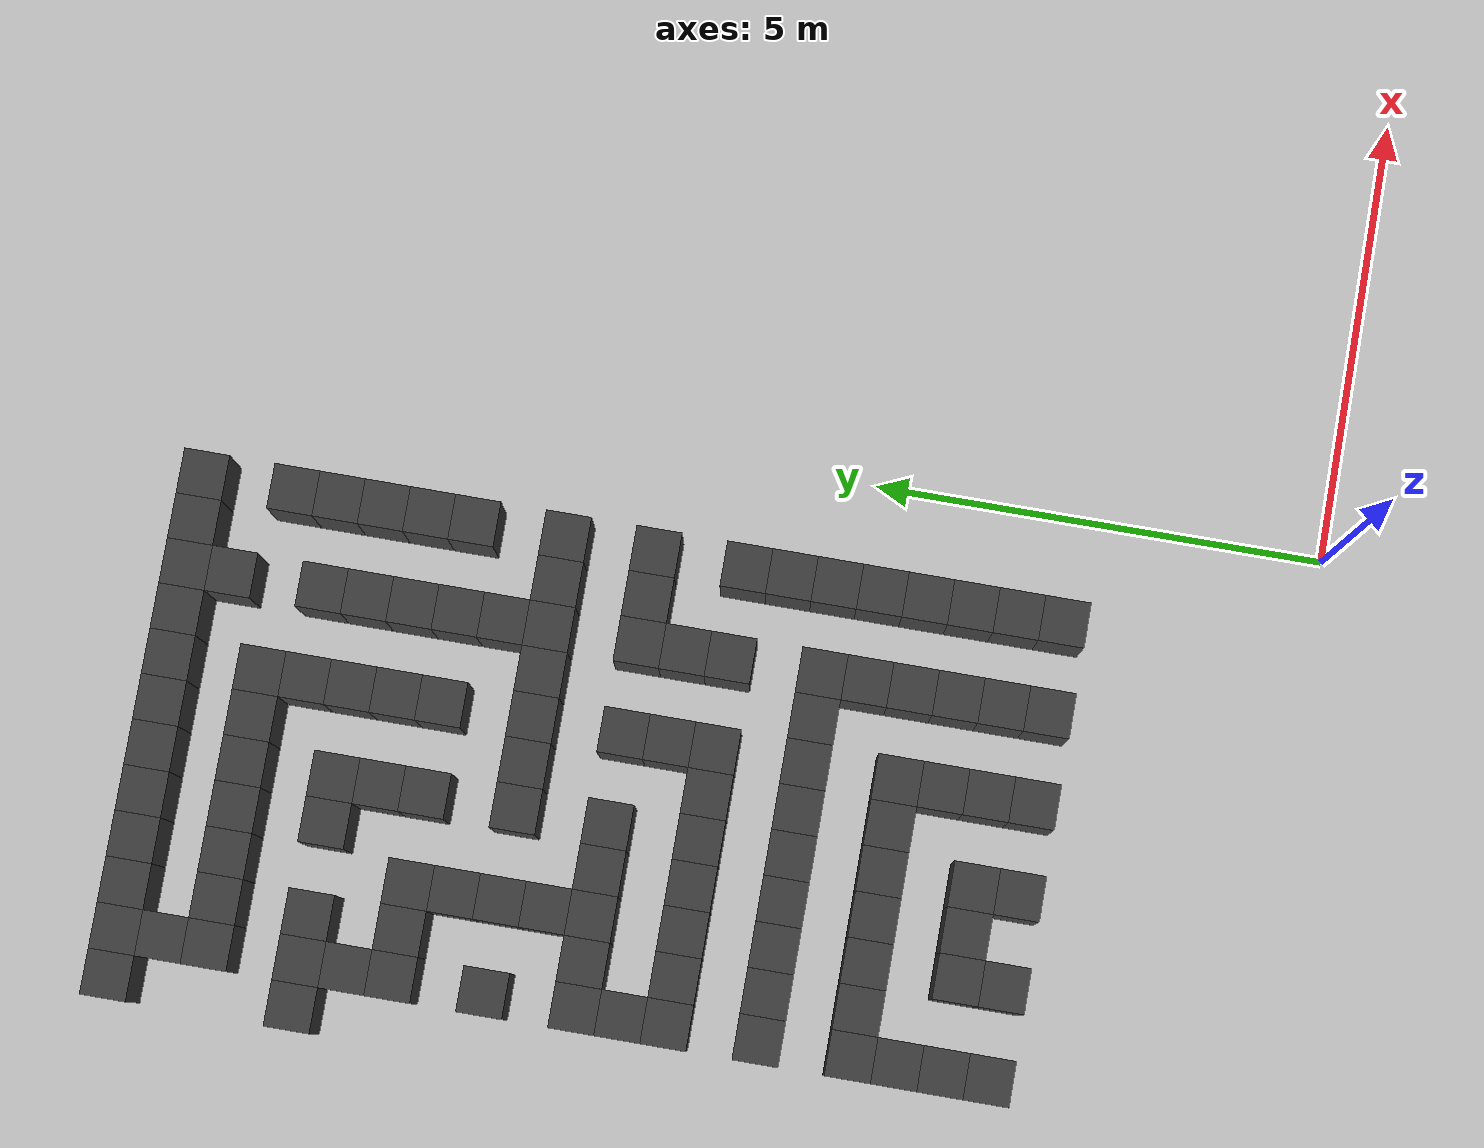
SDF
<sdf version="1.7">
 <world name="map_18313">
  <model name="ground_plane">
   <static>true</static>
   <link name="link">
    <collision name="collision">
     <geometry><plane><normal>0 0 1</normal><size>200 200</size></plane></geometry>
    </collision>
    <visual name="visual">
     <geometry><plane><normal>0 0 1</normal><size>200 200</size></plane></geometry>
     <material><ambient>0.8 0.8 0.8 1</ambient><diffuse>0.8 0.8 0.8 1</diffuse></material>
    </visual>
   </link>
  </model>
  <model name="maze_environment">
   <static>true</static>
   <link name="wall_11">
    <pose>-6.750 12.250 0.500 0 0 0</pose>
    <collision name="col"><geometry><box><size>0.5 0.5 1.0</size></box></geometry></collision>
    <visual name="vis">
     <geometry><box><size>0.5 0.5 1.0</size></box></geometry>
     <material><ambient>0.15 0.15 0.15 1</ambient><diffuse>0.25 0.25 0.25 1</diffuse></material>
    </visual>
   </link>
   <link name="wall_12">
    <pose>-6.250 12.250 0.500 0 0 0</pose>
    <collision name="col"><geometry><box><size>0.5 0.5 1.0</size></box></geometry></collision>
    <visual name="vis">
     <geometry><box><size>0.5 0.5 1.0</size></box></geometry>
     <material><ambient>0.15 0.15 0.15 1</ambient><diffuse>0.25 0.25 0.25 1</diffuse></material>
    </visual>
   </link>
   <link name="wall_13">
    <pose>-5.750 12.250 0.500 0 0 0</pose>
    <collision name="col"><geometry><box><size>0.5 0.5 1.0</size></box></geometry></collision>
    <visual name="vis">
     <geometry><box><size>0.5 0.5 1.0</size></box></geometry>
     <material><ambient>0.15 0.15 0.15 1</ambient><diffuse>0.25 0.25 0.25 1</diffuse></material>
    </visual>
   </link>
   <link name="wall_14">
    <pose>-5.250 12.250 0.500 0 0 0</pose>
    <collision name="col"><geometry><box><size>0.5 0.5 1.0</size></box></geometry></collision>
    <visual name="vis">
     <geometry><box><size>0.5 0.5 1.0</size></box></geometry>
     <material><ambient>0.15 0.15 0.15 1</ambient><diffuse>0.25 0.25 0.25 1</diffuse></material>
    </visual>
   </link>
   <link name="wall_15">
    <pose>-4.750 12.250 0.500 0 0 0</pose>
    <collision name="col"><geometry><box><size>0.5 0.5 1.0</size></box></geometry></collision>
    <visual name="vis">
     <geometry><box><size>0.5 0.5 1.0</size></box></geometry>
     <material><ambient>0.15 0.15 0.15 1</ambient><diffuse>0.25 0.25 0.25 1</diffuse></material>
    </visual>
   </link>
   <link name="wall_16">
    <pose>-4.250 12.250 0.500 0 0 0</pose>
    <collision name="col"><geometry><box><size>0.5 0.5 1.0</size></box></geometry></collision>
    <visual name="vis">
     <geometry><box><size>0.5 0.5 1.0</size></box></geometry>
     <material><ambient>0.15 0.15 0.15 1</ambient><diffuse>0.25 0.25 0.25 1</diffuse></material>
    </visual>
   </link>
   <link name="wall_17">
    <pose>-3.750 12.250 0.500 0 0 0</pose>
    <collision name="col"><geometry><box><size>0.5 0.5 1.0</size></box></geometry></collision>
    <visual name="vis">
     <geometry><box><size>0.5 0.5 1.0</size></box></geometry>
     <material><ambient>0.15 0.15 0.15 1</ambient><diffuse>0.25 0.25 0.25 1</diffuse></material>
    </visual>
   </link>
   <link name="wall_18">
    <pose>-3.250 12.250 0.500 0 0 0</pose>
    <collision name="col"><geometry><box><size>0.5 0.5 1.0</size></box></geometry></collision>
    <visual name="vis">
     <geometry><box><size>0.5 0.5 1.0</size></box></geometry>
     <material><ambient>0.15 0.15 0.15 1</ambient><diffuse>0.25 0.25 0.25 1</diffuse></material>
    </visual>
   </link>
   <link name="wall_19">
    <pose>-2.750 12.250 0.500 0 0 0</pose>
    <collision name="col"><geometry><box><size>0.5 0.5 1.0</size></box></geometry></collision>
    <visual name="vis">
     <geometry><box><size>0.5 0.5 1.0</size></box></geometry>
     <material><ambient>0.15 0.15 0.15 1</ambient><diffuse>0.25 0.25 0.25 1</diffuse></material>
    </visual>
   </link>
   <link name="wall_20">
    <pose>-2.250 12.250 0.500 0 0 0</pose>
    <collision name="col"><geometry><box><size>0.5 0.5 1.0</size></box></geometry></collision>
    <visual name="vis">
     <geometry><box><size>0.5 0.5 1.0</size></box></geometry>
     <material><ambient>0.15 0.15 0.15 1</ambient><diffuse>0.25 0.25 0.25 1</diffuse></material>
    </visual>
   </link>
   <link name="wall_21">
    <pose>-1.750 12.250 0.500 0 0 0</pose>
    <collision name="col"><geometry><box><size>0.5 0.5 1.0</size></box></geometry></collision>
    <visual name="vis">
     <geometry><box><size>0.5 0.5 1.0</size></box></geometry>
     <material><ambient>0.15 0.15 0.15 1</ambient><diffuse>0.25 0.25 0.25 1</diffuse></material>
    </visual>
   </link>
   <link name="wall_22">
    <pose>-1.250 12.250 0.500 0 0 0</pose>
    <collision name="col"><geometry><box><size>0.5 0.5 1.0</size></box></geometry></collision>
    <visual name="vis">
     <geometry><box><size>0.5 0.5 1.0</size></box></geometry>
     <material><ambient>0.15 0.15 0.15 1</ambient><diffuse>0.25 0.25 0.25 1</diffuse></material>
    </visual>
   </link>
   <link name="wall_52">
    <pose>-6.250 11.750 0.500 0 0 0</pose>
    <collision name="col"><geometry><box><size>0.5 0.5 1.0</size></box></geometry></collision>
    <visual name="vis">
     <geometry><box><size>0.5 0.5 1.0</size></box></geometry>
     <material><ambient>0.15 0.15 0.15 1</ambient><diffuse>0.25 0.25 0.25 1</diffuse></material>
    </visual>
   </link>
   <link name="wall_53">
    <pose>-2.250 11.750 0.500 0 0 0</pose>
    <collision name="col"><geometry><box><size>0.5 0.5 1.0</size></box></geometry></collision>
    <visual name="vis">
     <geometry><box><size>0.5 0.5 1.0</size></box></geometry>
     <material><ambient>0.15 0.15 0.15 1</ambient><diffuse>0.25 0.25 0.25 1</diffuse></material>
    </visual>
   </link>
   <link name="wall_68">
    <pose>-6.250 11.250 0.500 0 0 0</pose>
    <collision name="col"><geometry><box><size>0.5 0.5 1.0</size></box></geometry></collision>
    <visual name="vis">
     <geometry><box><size>0.5 0.5 1.0</size></box></geometry>
     <material><ambient>0.15 0.15 0.15 1</ambient><diffuse>0.25 0.25 0.25 1</diffuse></material>
    </visual>
   </link>
   <link name="wall_69">
    <pose>-5.750 11.250 0.500 0 0 0</pose>
    <collision name="col"><geometry><box><size>0.5 0.5 1.0</size></box></geometry></collision>
    <visual name="vis">
     <geometry><box><size>0.5 0.5 1.0</size></box></geometry>
     <material><ambient>0.15 0.15 0.15 1</ambient><diffuse>0.25 0.25 0.25 1</diffuse></material>
    </visual>
   </link>
   <link name="wall_70">
    <pose>-5.250 11.250 0.500 0 0 0</pose>
    <collision name="col"><geometry><box><size>0.5 0.5 1.0</size></box></geometry></collision>
    <visual name="vis">
     <geometry><box><size>0.5 0.5 1.0</size></box></geometry>
     <material><ambient>0.15 0.15 0.15 1</ambient><diffuse>0.25 0.25 0.25 1</diffuse></material>
    </visual>
   </link>
   <link name="wall_71">
    <pose>-4.750 11.250 0.500 0 0 0</pose>
    <collision name="col"><geometry><box><size>0.5 0.5 1.0</size></box></geometry></collision>
    <visual name="vis">
     <geometry><box><size>0.5 0.5 1.0</size></box></geometry>
     <material><ambient>0.15 0.15 0.15 1</ambient><diffuse>0.25 0.25 0.25 1</diffuse></material>
    </visual>
   </link>
   <link name="wall_72">
    <pose>-4.250 11.250 0.500 0 0 0</pose>
    <collision name="col"><geometry><box><size>0.5 0.5 1.0</size></box></geometry></collision>
    <visual name="vis">
     <geometry><box><size>0.5 0.5 1.0</size></box></geometry>
     <material><ambient>0.15 0.15 0.15 1</ambient><diffuse>0.25 0.25 0.25 1</diffuse></material>
    </visual>
   </link>
   <link name="wall_73">
    <pose>-3.750 11.250 0.500 0 0 0</pose>
    <collision name="col"><geometry><box><size>0.5 0.5 1.0</size></box></geometry></collision>
    <visual name="vis">
     <geometry><box><size>0.5 0.5 1.0</size></box></geometry>
     <material><ambient>0.15 0.15 0.15 1</ambient><diffuse>0.25 0.25 0.25 1</diffuse></material>
    </visual>
   </link>
   <link name="wall_74">
    <pose>-3.250 11.250 0.500 0 0 0</pose>
    <collision name="col"><geometry><box><size>0.5 0.5 1.0</size></box></geometry></collision>
    <visual name="vis">
     <geometry><box><size>0.5 0.5 1.0</size></box></geometry>
     <material><ambient>0.15 0.15 0.15 1</ambient><diffuse>0.25 0.25 0.25 1</diffuse></material>
    </visual>
   </link>
   <link name="wall_75">
    <pose>-1.250 11.250 0.500 0 0 0</pose>
    <collision name="col"><geometry><box><size>0.5 0.5 1.0</size></box></geometry></collision>
    <visual name="vis">
     <geometry><box><size>0.5 0.5 1.0</size></box></geometry>
     <material><ambient>0.15 0.15 0.15 1</ambient><diffuse>0.25 0.25 0.25 1</diffuse></material>
    </visual>
   </link>
   <link name="wall_97">
    <pose>-3.250 10.750 0.500 0 0 0</pose>
    <collision name="col"><geometry><box><size>0.5 0.5 1.0</size></box></geometry></collision>
    <visual name="vis">
     <geometry><box><size>0.5 0.5 1.0</size></box></geometry>
     <material><ambient>0.15 0.15 0.15 1</ambient><diffuse>0.25 0.25 0.25 1</diffuse></material>
    </visual>
   </link>
   <link name="wall_98">
    <pose>-2.250 10.750 0.500 0 0 0</pose>
    <collision name="col"><geometry><box><size>0.5 0.5 1.0</size></box></geometry></collision>
    <visual name="vis">
     <geometry><box><size>0.5 0.5 1.0</size></box></geometry>
     <material><ambient>0.15 0.15 0.15 1</ambient><diffuse>0.25 0.25 0.25 1</diffuse></material>
    </visual>
   </link>
   <link name="wall_99">
    <pose>-1.250 10.750 0.500 0 0 0</pose>
    <collision name="col"><geometry><box><size>0.5 0.5 1.0</size></box></geometry></collision>
    <visual name="vis">
     <geometry><box><size>0.5 0.5 1.0</size></box></geometry>
     <material><ambient>0.15 0.15 0.15 1</ambient><diffuse>0.25 0.25 0.25 1</diffuse></material>
    </visual>
   </link>
   <link name="wall_116">
    <pose>-6.750 10.250 0.500 0 0 0</pose>
    <collision name="col"><geometry><box><size>0.5 0.5 1.0</size></box></geometry></collision>
    <visual name="vis">
     <geometry><box><size>0.5 0.5 1.0</size></box></geometry>
     <material><ambient>0.15 0.15 0.15 1</ambient><diffuse>0.25 0.25 0.25 1</diffuse></material>
    </visual>
   </link>
   <link name="wall_117">
    <pose>-6.250 10.250 0.500 0 0 0</pose>
    <collision name="col"><geometry><box><size>0.5 0.5 1.0</size></box></geometry></collision>
    <visual name="vis">
     <geometry><box><size>0.5 0.5 1.0</size></box></geometry>
     <material><ambient>0.15 0.15 0.15 1</ambient><diffuse>0.25 0.25 0.25 1</diffuse></material>
    </visual>
   </link>
   <link name="wall_118">
    <pose>-5.750 10.250 0.500 0 0 0</pose>
    <collision name="col"><geometry><box><size>0.5 0.5 1.0</size></box></geometry></collision>
    <visual name="vis">
     <geometry><box><size>0.5 0.5 1.0</size></box></geometry>
     <material><ambient>0.15 0.15 0.15 1</ambient><diffuse>0.25 0.25 0.25 1</diffuse></material>
    </visual>
   </link>
   <link name="wall_119">
    <pose>-4.750 10.250 0.500 0 0 0</pose>
    <collision name="col"><geometry><box><size>0.5 0.5 1.0</size></box></geometry></collision>
    <visual name="vis">
     <geometry><box><size>0.5 0.5 1.0</size></box></geometry>
     <material><ambient>0.15 0.15 0.15 1</ambient><diffuse>0.25 0.25 0.25 1</diffuse></material>
    </visual>
   </link>
   <link name="wall_120">
    <pose>-4.250 10.250 0.500 0 0 0</pose>
    <collision name="col"><geometry><box><size>0.5 0.5 1.0</size></box></geometry></collision>
    <visual name="vis">
     <geometry><box><size>0.5 0.5 1.0</size></box></geometry>
     <material><ambient>0.15 0.15 0.15 1</ambient><diffuse>0.25 0.25 0.25 1</diffuse></material>
    </visual>
   </link>
   <link name="wall_121">
    <pose>-3.250 10.250 0.500 0 0 0</pose>
    <collision name="col"><geometry><box><size>0.5 0.5 1.0</size></box></geometry></collision>
    <visual name="vis">
     <geometry><box><size>0.5 0.5 1.0</size></box></geometry>
     <material><ambient>0.15 0.15 0.15 1</ambient><diffuse>0.25 0.25 0.25 1</diffuse></material>
    </visual>
   </link>
   <link name="wall_122">
    <pose>-2.250 10.250 0.500 0 0 0</pose>
    <collision name="col"><geometry><box><size>0.5 0.5 1.0</size></box></geometry></collision>
    <visual name="vis">
     <geometry><box><size>0.5 0.5 1.0</size></box></geometry>
     <material><ambient>0.15 0.15 0.15 1</ambient><diffuse>0.25 0.25 0.25 1</diffuse></material>
    </visual>
   </link>
   <link name="wall_123">
    <pose>-1.250 10.250 0.500 0 0 0</pose>
    <collision name="col"><geometry><box><size>0.5 0.5 1.0</size></box></geometry></collision>
    <visual name="vis">
     <geometry><box><size>0.5 0.5 1.0</size></box></geometry>
     <material><ambient>0.15 0.15 0.15 1</ambient><diffuse>0.25 0.25 0.25 1</diffuse></material>
    </visual>
   </link>
   <link name="wall_150">
    <pose>-6.250 9.750 0.500 0 0 0</pose>
    <collision name="col"><geometry><box><size>0.5 0.5 1.0</size></box></geometry></collision>
    <visual name="vis">
     <geometry><box><size>0.5 0.5 1.0</size></box></geometry>
     <material><ambient>0.15 0.15 0.15 1</ambient><diffuse>0.25 0.25 0.25 1</diffuse></material>
    </visual>
   </link>
   <link name="wall_151">
    <pose>-4.250 9.750 0.500 0 0 0</pose>
    <collision name="col"><geometry><box><size>0.5 0.5 1.0</size></box></geometry></collision>
    <visual name="vis">
     <geometry><box><size>0.5 0.5 1.0</size></box></geometry>
     <material><ambient>0.15 0.15 0.15 1</ambient><diffuse>0.25 0.25 0.25 1</diffuse></material>
    </visual>
   </link>
   <link name="wall_152">
    <pose>-3.250 9.750 0.500 0 0 0</pose>
    <collision name="col"><geometry><box><size>0.5 0.5 1.0</size></box></geometry></collision>
    <visual name="vis">
     <geometry><box><size>0.5 0.5 1.0</size></box></geometry>
     <material><ambient>0.15 0.15 0.15 1</ambient><diffuse>0.25 0.25 0.25 1</diffuse></material>
    </visual>
   </link>
   <link name="wall_153">
    <pose>-2.250 9.750 0.500 0 0 0</pose>
    <collision name="col"><geometry><box><size>0.5 0.5 1.0</size></box></geometry></collision>
    <visual name="vis">
     <geometry><box><size>0.5 0.5 1.0</size></box></geometry>
     <material><ambient>0.15 0.15 0.15 1</ambient><diffuse>0.25 0.25 0.25 1</diffuse></material>
    </visual>
   </link>
   <link name="wall_154">
    <pose>-1.250 9.750 0.500 0 0 0</pose>
    <collision name="col"><geometry><box><size>0.5 0.5 1.0</size></box></geometry></collision>
    <visual name="vis">
     <geometry><box><size>0.5 0.5 1.0</size></box></geometry>
     <material><ambient>0.15 0.15 0.15 1</ambient><diffuse>0.25 0.25 0.25 1</diffuse></material>
    </visual>
   </link>
   <link name="wall_168">
    <pose>-6.250 9.250 0.500 0 0 0</pose>
    <collision name="col"><geometry><box><size>0.5 0.5 1.0</size></box></geometry></collision>
    <visual name="vis">
     <geometry><box><size>0.5 0.5 1.0</size></box></geometry>
     <material><ambient>0.15 0.15 0.15 1</ambient><diffuse>0.25 0.25 0.25 1</diffuse></material>
    </visual>
   </link>
   <link name="wall_169">
    <pose>-5.750 9.250 0.500 0 0 0</pose>
    <collision name="col"><geometry><box><size>0.5 0.5 1.0</size></box></geometry></collision>
    <visual name="vis">
     <geometry><box><size>0.5 0.5 1.0</size></box></geometry>
     <material><ambient>0.15 0.15 0.15 1</ambient><diffuse>0.25 0.25 0.25 1</diffuse></material>
    </visual>
   </link>
   <link name="wall_170">
    <pose>-5.250 9.250 0.500 0 0 0</pose>
    <collision name="col"><geometry><box><size>0.5 0.5 1.0</size></box></geometry></collision>
    <visual name="vis">
     <geometry><box><size>0.5 0.5 1.0</size></box></geometry>
     <material><ambient>0.15 0.15 0.15 1</ambient><diffuse>0.25 0.25 0.25 1</diffuse></material>
    </visual>
   </link>
   <link name="wall_171">
    <pose>-4.250 9.250 0.500 0 0 0</pose>
    <collision name="col"><geometry><box><size>0.5 0.5 1.0</size></box></geometry></collision>
    <visual name="vis">
     <geometry><box><size>0.5 0.5 1.0</size></box></geometry>
     <material><ambient>0.15 0.15 0.15 1</ambient><diffuse>0.25 0.25 0.25 1</diffuse></material>
    </visual>
   </link>
   <link name="wall_172">
    <pose>-3.250 9.250 0.500 0 0 0</pose>
    <collision name="col"><geometry><box><size>0.5 0.5 1.0</size></box></geometry></collision>
    <visual name="vis">
     <geometry><box><size>0.5 0.5 1.0</size></box></geometry>
     <material><ambient>0.15 0.15 0.15 1</ambient><diffuse>0.25 0.25 0.25 1</diffuse></material>
    </visual>
   </link>
   <link name="wall_173">
    <pose>-2.250 9.250 0.500 0 0 0</pose>
    <collision name="col"><geometry><box><size>0.5 0.5 1.0</size></box></geometry></collision>
    <visual name="vis">
     <geometry><box><size>0.5 0.5 1.0</size></box></geometry>
     <material><ambient>0.15 0.15 0.15 1</ambient><diffuse>0.25 0.25 0.25 1</diffuse></material>
    </visual>
   </link>
   <link name="wall_174">
    <pose>-1.250 9.250 0.500 0 0 0</pose>
    <collision name="col"><geometry><box><size>0.5 0.5 1.0</size></box></geometry></collision>
    <visual name="vis">
     <geometry><box><size>0.5 0.5 1.0</size></box></geometry>
     <material><ambient>0.15 0.15 0.15 1</ambient><diffuse>0.25 0.25 0.25 1</diffuse></material>
    </visual>
   </link>
   <link name="wall_199">
    <pose>-5.250 8.750 0.500 0 0 0</pose>
    <collision name="col"><geometry><box><size>0.5 0.5 1.0</size></box></geometry></collision>
    <visual name="vis">
     <geometry><box><size>0.5 0.5 1.0</size></box></geometry>
     <material><ambient>0.15 0.15 0.15 1</ambient><diffuse>0.25 0.25 0.25 1</diffuse></material>
    </visual>
   </link>
   <link name="wall_200">
    <pose>-2.250 8.750 0.500 0 0 0</pose>
    <collision name="col"><geometry><box><size>0.5 0.5 1.0</size></box></geometry></collision>
    <visual name="vis">
     <geometry><box><size>0.5 0.5 1.0</size></box></geometry>
     <material><ambient>0.15 0.15 0.15 1</ambient><diffuse>0.25 0.25 0.25 1</diffuse></material>
    </visual>
   </link>
   <link name="wall_218">
    <pose>-6.250 8.250 0.500 0 0 0</pose>
    <collision name="col"><geometry><box><size>0.5 0.5 1.0</size></box></geometry></collision>
    <visual name="vis">
     <geometry><box><size>0.5 0.5 1.0</size></box></geometry>
     <material><ambient>0.15 0.15 0.15 1</ambient><diffuse>0.25 0.25 0.25 1</diffuse></material>
    </visual>
   </link>
   <link name="wall_219">
    <pose>-5.250 8.250 0.500 0 0 0</pose>
    <collision name="col"><geometry><box><size>0.5 0.5 1.0</size></box></geometry></collision>
    <visual name="vis">
     <geometry><box><size>0.5 0.5 1.0</size></box></geometry>
     <material><ambient>0.15 0.15 0.15 1</ambient><diffuse>0.25 0.25 0.25 1</diffuse></material>
    </visual>
   </link>
   <link name="wall_220">
    <pose>-4.250 8.250 0.500 0 0 0</pose>
    <collision name="col"><geometry><box><size>0.5 0.5 1.0</size></box></geometry></collision>
    <visual name="vis">
     <geometry><box><size>0.5 0.5 1.0</size></box></geometry>
     <material><ambient>0.15 0.15 0.15 1</ambient><diffuse>0.25 0.25 0.25 1</diffuse></material>
    </visual>
   </link>
   <link name="wall_221">
    <pose>-3.750 8.250 0.500 0 0 0</pose>
    <collision name="col"><geometry><box><size>0.5 0.5 1.0</size></box></geometry></collision>
    <visual name="vis">
     <geometry><box><size>0.5 0.5 1.0</size></box></geometry>
     <material><ambient>0.15 0.15 0.15 1</ambient><diffuse>0.25 0.25 0.25 1</diffuse></material>
    </visual>
   </link>
   <link name="wall_222">
    <pose>-3.250 8.250 0.500 0 0 0</pose>
    <collision name="col"><geometry><box><size>0.5 0.5 1.0</size></box></geometry></collision>
    <visual name="vis">
     <geometry><box><size>0.5 0.5 1.0</size></box></geometry>
     <material><ambient>0.15 0.15 0.15 1</ambient><diffuse>0.25 0.25 0.25 1</diffuse></material>
    </visual>
   </link>
   <link name="wall_223">
    <pose>-2.750 8.250 0.500 0 0 0</pose>
    <collision name="col"><geometry><box><size>0.5 0.5 1.0</size></box></geometry></collision>
    <visual name="vis">
     <geometry><box><size>0.5 0.5 1.0</size></box></geometry>
     <material><ambient>0.15 0.15 0.15 1</ambient><diffuse>0.25 0.25 0.25 1</diffuse></material>
    </visual>
   </link>
   <link name="wall_224">
    <pose>-2.250 8.250 0.500 0 0 0</pose>
    <collision name="col"><geometry><box><size>0.5 0.5 1.0</size></box></geometry></collision>
    <visual name="vis">
     <geometry><box><size>0.5 0.5 1.0</size></box></geometry>
     <material><ambient>0.15 0.15 0.15 1</ambient><diffuse>0.25 0.25 0.25 1</diffuse></material>
    </visual>
   </link>
   <link name="wall_225">
    <pose>-1.750 8.250 0.500 0 0 0</pose>
    <collision name="col"><geometry><box><size>0.5 0.5 1.0</size></box></geometry></collision>
    <visual name="vis">
     <geometry><box><size>0.5 0.5 1.0</size></box></geometry>
     <material><ambient>0.15 0.15 0.15 1</ambient><diffuse>0.25 0.25 0.25 1</diffuse></material>
    </visual>
   </link>
   <link name="wall_226">
    <pose>-1.250 8.250 0.500 0 0 0</pose>
    <collision name="col"><geometry><box><size>0.5 0.5 1.0</size></box></geometry></collision>
    <visual name="vis">
     <geometry><box><size>0.5 0.5 1.0</size></box></geometry>
     <material><ambient>0.15 0.15 0.15 1</ambient><diffuse>0.25 0.25 0.25 1</diffuse></material>
    </visual>
   </link>
   <link name="wall_249">
    <pose>-5.250 7.750 0.500 0 0 0</pose>
    <collision name="col"><geometry><box><size>0.5 0.5 1.0</size></box></geometry></collision>
    <visual name="vis">
     <geometry><box><size>0.5 0.5 1.0</size></box></geometry>
     <material><ambient>0.15 0.15 0.15 1</ambient><diffuse>0.25 0.25 0.25 1</diffuse></material>
    </visual>
   </link>
   <link name="wall_266">
    <pose>-6.250 7.250 0.500 0 0 0</pose>
    <collision name="col"><geometry><box><size>0.5 0.5 1.0</size></box></geometry></collision>
    <visual name="vis">
     <geometry><box><size>0.5 0.5 1.0</size></box></geometry>
     <material><ambient>0.15 0.15 0.15 1</ambient><diffuse>0.25 0.25 0.25 1</diffuse></material>
    </visual>
   </link>
   <link name="wall_267">
    <pose>-5.750 7.250 0.500 0 0 0</pose>
    <collision name="col"><geometry><box><size>0.5 0.5 1.0</size></box></geometry></collision>
    <visual name="vis">
     <geometry><box><size>0.5 0.5 1.0</size></box></geometry>
     <material><ambient>0.15 0.15 0.15 1</ambient><diffuse>0.25 0.25 0.25 1</diffuse></material>
    </visual>
   </link>
   <link name="wall_268">
    <pose>-5.250 7.250 0.500 0 0 0</pose>
    <collision name="col"><geometry><box><size>0.5 0.5 1.0</size></box></geometry></collision>
    <visual name="vis">
     <geometry><box><size>0.5 0.5 1.0</size></box></geometry>
     <material><ambient>0.15 0.15 0.15 1</ambient><diffuse>0.25 0.25 0.25 1</diffuse></material>
    </visual>
   </link>
   <link name="wall_269">
    <pose>-4.750 7.250 0.500 0 0 0</pose>
    <collision name="col"><geometry><box><size>0.5 0.5 1.0</size></box></geometry></collision>
    <visual name="vis">
     <geometry><box><size>0.5 0.5 1.0</size></box></geometry>
     <material><ambient>0.15 0.15 0.15 1</ambient><diffuse>0.25 0.25 0.25 1</diffuse></material>
    </visual>
   </link>
   <link name="wall_270">
    <pose>-4.250 7.250 0.500 0 0 0</pose>
    <collision name="col"><geometry><box><size>0.5 0.5 1.0</size></box></geometry></collision>
    <visual name="vis">
     <geometry><box><size>0.5 0.5 1.0</size></box></geometry>
     <material><ambient>0.15 0.15 0.15 1</ambient><diffuse>0.25 0.25 0.25 1</diffuse></material>
    </visual>
   </link>
   <link name="wall_271">
    <pose>-3.250 7.250 0.500 0 0 0</pose>
    <collision name="col"><geometry><box><size>0.5 0.5 1.0</size></box></geometry></collision>
    <visual name="vis">
     <geometry><box><size>0.5 0.5 1.0</size></box></geometry>
     <material><ambient>0.15 0.15 0.15 1</ambient><diffuse>0.25 0.25 0.25 1</diffuse></material>
    </visual>
   </link>
   <link name="wall_272">
    <pose>-2.250 7.250 0.500 0 0 0</pose>
    <collision name="col"><geometry><box><size>0.5 0.5 1.0</size></box></geometry></collision>
    <visual name="vis">
     <geometry><box><size>0.5 0.5 1.0</size></box></geometry>
     <material><ambient>0.15 0.15 0.15 1</ambient><diffuse>0.25 0.25 0.25 1</diffuse></material>
    </visual>
   </link>
   <link name="wall_273">
    <pose>-1.750 7.250 0.500 0 0 0</pose>
    <collision name="col"><geometry><box><size>0.5 0.5 1.0</size></box></geometry></collision>
    <visual name="vis">
     <geometry><box><size>0.5 0.5 1.0</size></box></geometry>
     <material><ambient>0.15 0.15 0.15 1</ambient><diffuse>0.25 0.25 0.25 1</diffuse></material>
    </visual>
   </link>
   <link name="wall_274">
    <pose>-1.250 7.250 0.500 0 0 0</pose>
    <collision name="col"><geometry><box><size>0.5 0.5 1.0</size></box></geometry></collision>
    <visual name="vis">
     <geometry><box><size>0.5 0.5 1.0</size></box></geometry>
     <material><ambient>0.15 0.15 0.15 1</ambient><diffuse>0.25 0.25 0.25 1</diffuse></material>
    </visual>
   </link>
   <link name="wall_299">
    <pose>-6.250 6.750 0.500 0 0 0</pose>
    <collision name="col"><geometry><box><size>0.5 0.5 1.0</size></box></geometry></collision>
    <visual name="vis">
     <geometry><box><size>0.5 0.5 1.0</size></box></geometry>
     <material><ambient>0.15 0.15 0.15 1</ambient><diffuse>0.25 0.25 0.25 1</diffuse></material>
    </visual>
   </link>
   <link name="wall_300">
    <pose>-3.250 6.750 0.500 0 0 0</pose>
    <collision name="col"><geometry><box><size>0.5 0.5 1.0</size></box></geometry></collision>
    <visual name="vis">
     <geometry><box><size>0.5 0.5 1.0</size></box></geometry>
     <material><ambient>0.15 0.15 0.15 1</ambient><diffuse>0.25 0.25 0.25 1</diffuse></material>
    </visual>
   </link>
   <link name="wall_301">
    <pose>-2.250 6.750 0.500 0 0 0</pose>
    <collision name="col"><geometry><box><size>0.5 0.5 1.0</size></box></geometry></collision>
    <visual name="vis">
     <geometry><box><size>0.5 0.5 1.0</size></box></geometry>
     <material><ambient>0.15 0.15 0.15 1</ambient><diffuse>0.25 0.25 0.25 1</diffuse></material>
    </visual>
   </link>
   <link name="wall_318">
    <pose>-6.250 6.250 0.500 0 0 0</pose>
    <collision name="col"><geometry><box><size>0.5 0.5 1.0</size></box></geometry></collision>
    <visual name="vis">
     <geometry><box><size>0.5 0.5 1.0</size></box></geometry>
     <material><ambient>0.15 0.15 0.15 1</ambient><diffuse>0.25 0.25 0.25 1</diffuse></material>
    </visual>
   </link>
   <link name="wall_319">
    <pose>-5.750 6.250 0.500 0 0 0</pose>
    <collision name="col"><geometry><box><size>0.5 0.5 1.0</size></box></geometry></collision>
    <visual name="vis">
     <geometry><box><size>0.5 0.5 1.0</size></box></geometry>
     <material><ambient>0.15 0.15 0.15 1</ambient><diffuse>0.25 0.25 0.25 1</diffuse></material>
    </visual>
   </link>
   <link name="wall_320">
    <pose>-5.250 6.250 0.500 0 0 0</pose>
    <collision name="col"><geometry><box><size>0.5 0.5 1.0</size></box></geometry></collision>
    <visual name="vis">
     <geometry><box><size>0.5 0.5 1.0</size></box></geometry>
     <material><ambient>0.15 0.15 0.15 1</ambient><diffuse>0.25 0.25 0.25 1</diffuse></material>
    </visual>
   </link>
   <link name="wall_321">
    <pose>-4.750 6.250 0.500 0 0 0</pose>
    <collision name="col"><geometry><box><size>0.5 0.5 1.0</size></box></geometry></collision>
    <visual name="vis">
     <geometry><box><size>0.5 0.5 1.0</size></box></geometry>
     <material><ambient>0.15 0.15 0.15 1</ambient><diffuse>0.25 0.25 0.25 1</diffuse></material>
    </visual>
   </link>
   <link name="wall_322">
    <pose>-4.250 6.250 0.500 0 0 0</pose>
    <collision name="col"><geometry><box><size>0.5 0.5 1.0</size></box></geometry></collision>
    <visual name="vis">
     <geometry><box><size>0.5 0.5 1.0</size></box></geometry>
     <material><ambient>0.15 0.15 0.15 1</ambient><diffuse>0.25 0.25 0.25 1</diffuse></material>
    </visual>
   </link>
   <link name="wall_323">
    <pose>-3.750 6.250 0.500 0 0 0</pose>
    <collision name="col"><geometry><box><size>0.5 0.5 1.0</size></box></geometry></collision>
    <visual name="vis">
     <geometry><box><size>0.5 0.5 1.0</size></box></geometry>
     <material><ambient>0.15 0.15 0.15 1</ambient><diffuse>0.25 0.25 0.25 1</diffuse></material>
    </visual>
   </link>
   <link name="wall_324">
    <pose>-3.250 6.250 0.500 0 0 0</pose>
    <collision name="col"><geometry><box><size>0.5 0.5 1.0</size></box></geometry></collision>
    <visual name="vis">
     <geometry><box><size>0.5 0.5 1.0</size></box></geometry>
     <material><ambient>0.15 0.15 0.15 1</ambient><diffuse>0.25 0.25 0.25 1</diffuse></material>
    </visual>
   </link>
   <link name="wall_325">
    <pose>-2.250 6.250 0.500 0 0 0</pose>
    <collision name="col"><geometry><box><size>0.5 0.5 1.0</size></box></geometry></collision>
    <visual name="vis">
     <geometry><box><size>0.5 0.5 1.0</size></box></geometry>
     <material><ambient>0.15 0.15 0.15 1</ambient><diffuse>0.25 0.25 0.25 1</diffuse></material>
    </visual>
   </link>
   <link name="wall_326">
    <pose>-1.250 6.250 0.500 0 0 0</pose>
    <collision name="col"><geometry><box><size>0.5 0.5 1.0</size></box></geometry></collision>
    <visual name="vis">
     <geometry><box><size>0.5 0.5 1.0</size></box></geometry>
     <material><ambient>0.15 0.15 0.15 1</ambient><diffuse>0.25 0.25 0.25 1</diffuse></material>
    </visual>
   </link>
   <link name="wall_350">
    <pose>-1.250 5.750 0.500 0 0 0</pose>
    <collision name="col"><geometry><box><size>0.5 0.5 1.0</size></box></geometry></collision>
    <visual name="vis">
     <geometry><box><size>0.5 0.5 1.0</size></box></geometry>
     <material><ambient>0.15 0.15 0.15 1</ambient><diffuse>0.25 0.25 0.25 1</diffuse></material>
    </visual>
   </link>
   <link name="wall_368">
    <pose>-6.250 5.250 0.500 0 0 0</pose>
    <collision name="col"><geometry><box><size>0.5 0.5 1.0</size></box></geometry></collision>
    <visual name="vis">
     <geometry><box><size>0.5 0.5 1.0</size></box></geometry>
     <material><ambient>0.15 0.15 0.15 1</ambient><diffuse>0.25 0.25 0.25 1</diffuse></material>
    </visual>
   </link>
   <link name="wall_369">
    <pose>-5.750 5.250 0.500 0 0 0</pose>
    <collision name="col"><geometry><box><size>0.5 0.5 1.0</size></box></geometry></collision>
    <visual name="vis">
     <geometry><box><size>0.5 0.5 1.0</size></box></geometry>
     <material><ambient>0.15 0.15 0.15 1</ambient><diffuse>0.25 0.25 0.25 1</diffuse></material>
    </visual>
   </link>
   <link name="wall_370">
    <pose>-5.250 5.250 0.500 0 0 0</pose>
    <collision name="col"><geometry><box><size>0.5 0.5 1.0</size></box></geometry></collision>
    <visual name="vis">
     <geometry><box><size>0.5 0.5 1.0</size></box></geometry>
     <material><ambient>0.15 0.15 0.15 1</ambient><diffuse>0.25 0.25 0.25 1</diffuse></material>
    </visual>
   </link>
   <link name="wall_371">
    <pose>-4.750 5.250 0.500 0 0 0</pose>
    <collision name="col"><geometry><box><size>0.5 0.5 1.0</size></box></geometry></collision>
    <visual name="vis">
     <geometry><box><size>0.5 0.5 1.0</size></box></geometry>
     <material><ambient>0.15 0.15 0.15 1</ambient><diffuse>0.25 0.25 0.25 1</diffuse></material>
    </visual>
   </link>
   <link name="wall_372">
    <pose>-4.250 5.250 0.500 0 0 0</pose>
    <collision name="col"><geometry><box><size>0.5 0.5 1.0</size></box></geometry></collision>
    <visual name="vis">
     <geometry><box><size>0.5 0.5 1.0</size></box></geometry>
     <material><ambient>0.15 0.15 0.15 1</ambient><diffuse>0.25 0.25 0.25 1</diffuse></material>
    </visual>
   </link>
   <link name="wall_373">
    <pose>-3.750 5.250 0.500 0 0 0</pose>
    <collision name="col"><geometry><box><size>0.5 0.5 1.0</size></box></geometry></collision>
    <visual name="vis">
     <geometry><box><size>0.5 0.5 1.0</size></box></geometry>
     <material><ambient>0.15 0.15 0.15 1</ambient><diffuse>0.25 0.25 0.25 1</diffuse></material>
    </visual>
   </link>
   <link name="wall_374">
    <pose>-3.250 5.250 0.500 0 0 0</pose>
    <collision name="col"><geometry><box><size>0.5 0.5 1.0</size></box></geometry></collision>
    <visual name="vis">
     <geometry><box><size>0.5 0.5 1.0</size></box></geometry>
     <material><ambient>0.15 0.15 0.15 1</ambient><diffuse>0.25 0.25 0.25 1</diffuse></material>
    </visual>
   </link>
   <link name="wall_375">
    <pose>-2.750 5.250 0.500 0 0 0</pose>
    <collision name="col"><geometry><box><size>0.5 0.5 1.0</size></box></geometry></collision>
    <visual name="vis">
     <geometry><box><size>0.5 0.5 1.0</size></box></geometry>
     <material><ambient>0.15 0.15 0.15 1</ambient><diffuse>0.25 0.25 0.25 1</diffuse></material>
    </visual>
   </link>
   <link name="wall_376">
    <pose>-2.250 5.250 0.500 0 0 0</pose>
    <collision name="col"><geometry><box><size>0.5 0.5 1.0</size></box></geometry></collision>
    <visual name="vis">
     <geometry><box><size>0.5 0.5 1.0</size></box></geometry>
     <material><ambient>0.15 0.15 0.15 1</ambient><diffuse>0.25 0.25 0.25 1</diffuse></material>
    </visual>
   </link>
   <link name="wall_377">
    <pose>-1.250 5.250 0.500 0 0 0</pose>
    <collision name="col"><geometry><box><size>0.5 0.5 1.0</size></box></geometry></collision>
    <visual name="vis">
     <geometry><box><size>0.5 0.5 1.0</size></box></geometry>
     <material><ambient>0.15 0.15 0.15 1</ambient><diffuse>0.25 0.25 0.25 1</diffuse></material>
    </visual>
   </link>
   <link name="wall_400">
    <pose>-2.250 4.750 0.500 0 0 0</pose>
    <collision name="col"><geometry><box><size>0.5 0.5 1.0</size></box></geometry></collision>
    <visual name="vis">
     <geometry><box><size>0.5 0.5 1.0</size></box></geometry>
     <material><ambient>0.15 0.15 0.15 1</ambient><diffuse>0.25 0.25 0.25 1</diffuse></material>
    </visual>
   </link>
   <link name="wall_401">
    <pose>-1.250 4.750 0.500 0 0 0</pose>
    <collision name="col"><geometry><box><size>0.5 0.5 1.0</size></box></geometry></collision>
    <visual name="vis">
     <geometry><box><size>0.5 0.5 1.0</size></box></geometry>
     <material><ambient>0.15 0.15 0.15 1</ambient><diffuse>0.25 0.25 0.25 1</diffuse></material>
    </visual>
   </link>
   <link name="wall_417">
    <pose>-6.250 4.250 0.500 0 0 0</pose>
    <collision name="col"><geometry><box><size>0.5 0.5 1.0</size></box></geometry></collision>
    <visual name="vis">
     <geometry><box><size>0.5 0.5 1.0</size></box></geometry>
     <material><ambient>0.15 0.15 0.15 1</ambient><diffuse>0.25 0.25 0.25 1</diffuse></material>
    </visual>
   </link>
   <link name="wall_418">
    <pose>-5.750 4.250 0.500 0 0 0</pose>
    <collision name="col"><geometry><box><size>0.5 0.5 1.0</size></box></geometry></collision>
    <visual name="vis">
     <geometry><box><size>0.5 0.5 1.0</size></box></geometry>
     <material><ambient>0.15 0.15 0.15 1</ambient><diffuse>0.25 0.25 0.25 1</diffuse></material>
    </visual>
   </link>
   <link name="wall_419">
    <pose>-5.250 4.250 0.500 0 0 0</pose>
    <collision name="col"><geometry><box><size>0.5 0.5 1.0</size></box></geometry></collision>
    <visual name="vis">
     <geometry><box><size>0.5 0.5 1.0</size></box></geometry>
     <material><ambient>0.15 0.15 0.15 1</ambient><diffuse>0.25 0.25 0.25 1</diffuse></material>
    </visual>
   </link>
   <link name="wall_420">
    <pose>-4.750 4.250 0.500 0 0 0</pose>
    <collision name="col"><geometry><box><size>0.5 0.5 1.0</size></box></geometry></collision>
    <visual name="vis">
     <geometry><box><size>0.5 0.5 1.0</size></box></geometry>
     <material><ambient>0.15 0.15 0.15 1</ambient><diffuse>0.25 0.25 0.25 1</diffuse></material>
    </visual>
   </link>
   <link name="wall_421">
    <pose>-4.250 4.250 0.500 0 0 0</pose>
    <collision name="col"><geometry><box><size>0.5 0.5 1.0</size></box></geometry></collision>
    <visual name="vis">
     <geometry><box><size>0.5 0.5 1.0</size></box></geometry>
     <material><ambient>0.15 0.15 0.15 1</ambient><diffuse>0.25 0.25 0.25 1</diffuse></material>
    </visual>
   </link>
   <link name="wall_422">
    <pose>-3.750 4.250 0.500 0 0 0</pose>
    <collision name="col"><geometry><box><size>0.5 0.5 1.0</size></box></geometry></collision>
    <visual name="vis">
     <geometry><box><size>0.5 0.5 1.0</size></box></geometry>
     <material><ambient>0.15 0.15 0.15 1</ambient><diffuse>0.25 0.25 0.25 1</diffuse></material>
    </visual>
   </link>
   <link name="wall_423">
    <pose>-3.250 4.250 0.500 0 0 0</pose>
    <collision name="col"><geometry><box><size>0.5 0.5 1.0</size></box></geometry></collision>
    <visual name="vis">
     <geometry><box><size>0.5 0.5 1.0</size></box></geometry>
     <material><ambient>0.15 0.15 0.15 1</ambient><diffuse>0.25 0.25 0.25 1</diffuse></material>
    </visual>
   </link>
   <link name="wall_424">
    <pose>-2.250 4.250 0.500 0 0 0</pose>
    <collision name="col"><geometry><box><size>0.5 0.5 1.0</size></box></geometry></collision>
    <visual name="vis">
     <geometry><box><size>0.5 0.5 1.0</size></box></geometry>
     <material><ambient>0.15 0.15 0.15 1</ambient><diffuse>0.25 0.25 0.25 1</diffuse></material>
    </visual>
   </link>
   <link name="wall_425">
    <pose>-1.250 4.250 0.500 0 0 0</pose>
    <collision name="col"><geometry><box><size>0.5 0.5 1.0</size></box></geometry></collision>
    <visual name="vis">
     <geometry><box><size>0.5 0.5 1.0</size></box></geometry>
     <material><ambient>0.15 0.15 0.15 1</ambient><diffuse>0.25 0.25 0.25 1</diffuse></material>
    </visual>
   </link>
   <link name="wall_449">
    <pose>-6.250 3.750 0.500 0 0 0</pose>
    <collision name="col"><geometry><box><size>0.5 0.5 1.0</size></box></geometry></collision>
    <visual name="vis">
     <geometry><box><size>0.5 0.5 1.0</size></box></geometry>
     <material><ambient>0.15 0.15 0.15 1</ambient><diffuse>0.25 0.25 0.25 1</diffuse></material>
    </visual>
   </link>
   <link name="wall_450">
    <pose>-3.250 3.750 0.500 0 0 0</pose>
    <collision name="col"><geometry><box><size>0.5 0.5 1.0</size></box></geometry></collision>
    <visual name="vis">
     <geometry><box><size>0.5 0.5 1.0</size></box></geometry>
     <material><ambient>0.15 0.15 0.15 1</ambient><diffuse>0.25 0.25 0.25 1</diffuse></material>
    </visual>
   </link>
   <link name="wall_451">
    <pose>-2.250 3.750 0.500 0 0 0</pose>
    <collision name="col"><geometry><box><size>0.5 0.5 1.0</size></box></geometry></collision>
    <visual name="vis">
     <geometry><box><size>0.5 0.5 1.0</size></box></geometry>
     <material><ambient>0.15 0.15 0.15 1</ambient><diffuse>0.25 0.25 0.25 1</diffuse></material>
    </visual>
   </link>
   <link name="wall_452">
    <pose>-1.250 3.750 0.500 0 0 0</pose>
    <collision name="col"><geometry><box><size>0.5 0.5 1.0</size></box></geometry></collision>
    <visual name="vis">
     <geometry><box><size>0.5 0.5 1.0</size></box></geometry>
     <material><ambient>0.15 0.15 0.15 1</ambient><diffuse>0.25 0.25 0.25 1</diffuse></material>
    </visual>
   </link>
   <link name="wall_469">
    <pose>-6.250 3.250 0.500 0 0 0</pose>
    <collision name="col"><geometry><box><size>0.5 0.5 1.0</size></box></geometry></collision>
    <visual name="vis">
     <geometry><box><size>0.5 0.5 1.0</size></box></geometry>
     <material><ambient>0.15 0.15 0.15 1</ambient><diffuse>0.25 0.25 0.25 1</diffuse></material>
    </visual>
   </link>
   <link name="wall_470">
    <pose>-5.250 3.250 0.500 0 0 0</pose>
    <collision name="col"><geometry><box><size>0.5 0.5 1.0</size></box></geometry></collision>
    <visual name="vis">
     <geometry><box><size>0.5 0.5 1.0</size></box></geometry>
     <material><ambient>0.15 0.15 0.15 1</ambient><diffuse>0.25 0.25 0.25 1</diffuse></material>
    </visual>
   </link>
   <link name="wall_471">
    <pose>-4.750 3.250 0.500 0 0 0</pose>
    <collision name="col"><geometry><box><size>0.5 0.5 1.0</size></box></geometry></collision>
    <visual name="vis">
     <geometry><box><size>0.5 0.5 1.0</size></box></geometry>
     <material><ambient>0.15 0.15 0.15 1</ambient><diffuse>0.25 0.25 0.25 1</diffuse></material>
    </visual>
   </link>
   <link name="wall_472">
    <pose>-4.250 3.250 0.500 0 0 0</pose>
    <collision name="col"><geometry><box><size>0.5 0.5 1.0</size></box></geometry></collision>
    <visual name="vis">
     <geometry><box><size>0.5 0.5 1.0</size></box></geometry>
     <material><ambient>0.15 0.15 0.15 1</ambient><diffuse>0.25 0.25 0.25 1</diffuse></material>
    </visual>
   </link>
   <link name="wall_473">
    <pose>-3.250 3.250 0.500 0 0 0</pose>
    <collision name="col"><geometry><box><size>0.5 0.5 1.0</size></box></geometry></collision>
    <visual name="vis">
     <geometry><box><size>0.5 0.5 1.0</size></box></geometry>
     <material><ambient>0.15 0.15 0.15 1</ambient><diffuse>0.25 0.25 0.25 1</diffuse></material>
    </visual>
   </link>
   <link name="wall_474">
    <pose>-2.250 3.250 0.500 0 0 0</pose>
    <collision name="col"><geometry><box><size>0.5 0.5 1.0</size></box></geometry></collision>
    <visual name="vis">
     <geometry><box><size>0.5 0.5 1.0</size></box></geometry>
     <material><ambient>0.15 0.15 0.15 1</ambient><diffuse>0.25 0.25 0.25 1</diffuse></material>
    </visual>
   </link>
   <link name="wall_475">
    <pose>-1.250 3.250 0.500 0 0 0</pose>
    <collision name="col"><geometry><box><size>0.5 0.5 1.0</size></box></geometry></collision>
    <visual name="vis">
     <geometry><box><size>0.5 0.5 1.0</size></box></geometry>
     <material><ambient>0.15 0.15 0.15 1</ambient><diffuse>0.25 0.25 0.25 1</diffuse></material>
    </visual>
   </link>
   <link name="wall_499">
    <pose>-6.250 2.750 0.500 0 0 0</pose>
    <collision name="col"><geometry><box><size>0.5 0.5 1.0</size></box></geometry></collision>
    <visual name="vis">
     <geometry><box><size>0.5 0.5 1.0</size></box></geometry>
     <material><ambient>0.15 0.15 0.15 1</ambient><diffuse>0.25 0.25 0.25 1</diffuse></material>
    </visual>
   </link>
   <link name="wall_500">
    <pose>-5.250 2.750 0.500 0 0 0</pose>
    <collision name="col"><geometry><box><size>0.5 0.5 1.0</size></box></geometry></collision>
    <visual name="vis">
     <geometry><box><size>0.5 0.5 1.0</size></box></geometry>
     <material><ambient>0.15 0.15 0.15 1</ambient><diffuse>0.25 0.25 0.25 1</diffuse></material>
    </visual>
   </link>
   <link name="wall_501">
    <pose>-4.250 2.750 0.500 0 0 0</pose>
    <collision name="col"><geometry><box><size>0.5 0.5 1.0</size></box></geometry></collision>
    <visual name="vis">
     <geometry><box><size>0.5 0.5 1.0</size></box></geometry>
     <material><ambient>0.15 0.15 0.15 1</ambient><diffuse>0.25 0.25 0.25 1</diffuse></material>
    </visual>
   </link>
   <link name="wall_502">
    <pose>-3.250 2.750 0.500 0 0 0</pose>
    <collision name="col"><geometry><box><size>0.5 0.5 1.0</size></box></geometry></collision>
    <visual name="vis">
     <geometry><box><size>0.5 0.5 1.0</size></box></geometry>
     <material><ambient>0.15 0.15 0.15 1</ambient><diffuse>0.25 0.25 0.25 1</diffuse></material>
    </visual>
   </link>
   <link name="wall_503">
    <pose>-2.250 2.750 0.500 0 0 0</pose>
    <collision name="col"><geometry><box><size>0.5 0.5 1.0</size></box></geometry></collision>
    <visual name="vis">
     <geometry><box><size>0.5 0.5 1.0</size></box></geometry>
     <material><ambient>0.15 0.15 0.15 1</ambient><diffuse>0.25 0.25 0.25 1</diffuse></material>
    </visual>
   </link>
   <link name="wall_504">
    <pose>-1.250 2.750 0.500 0 0 0</pose>
    <collision name="col"><geometry><box><size>0.5 0.5 1.0</size></box></geometry></collision>
    <visual name="vis">
     <geometry><box><size>0.5 0.5 1.0</size></box></geometry>
     <material><ambient>0.15 0.15 0.15 1</ambient><diffuse>0.25 0.25 0.25 1</diffuse></material>
    </visual>
   </link>
  </model>
 </world>
</sdf>
